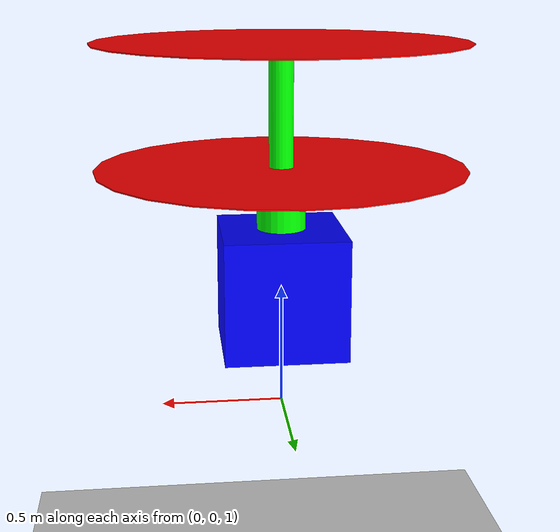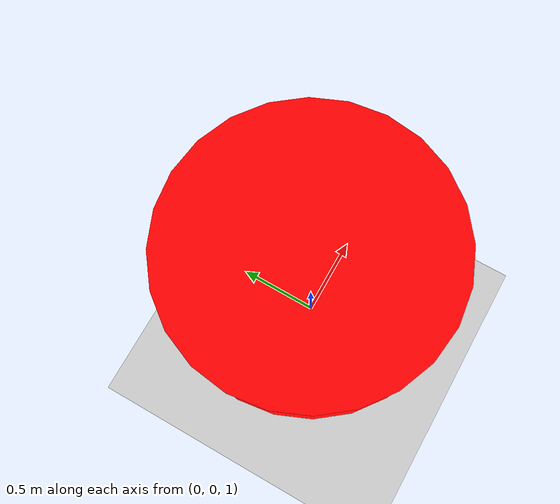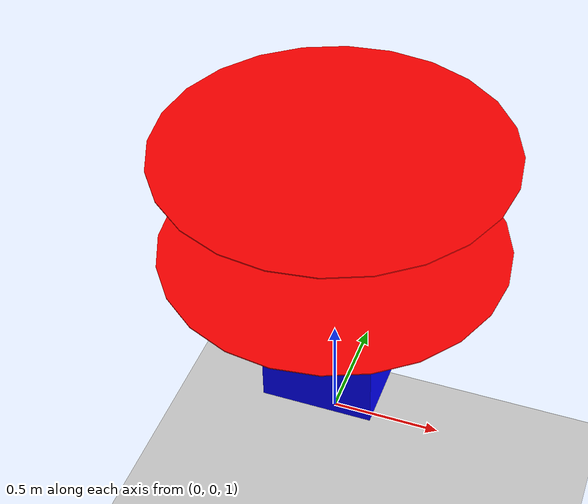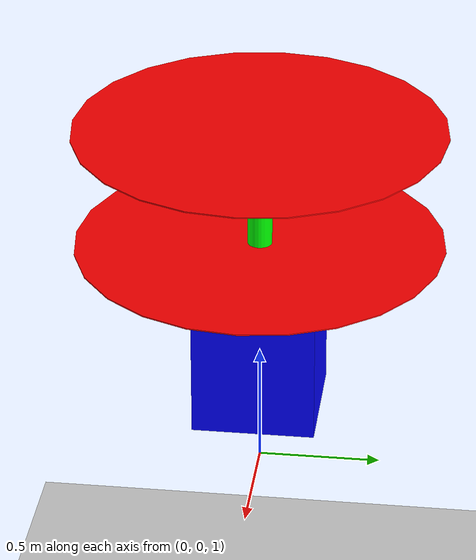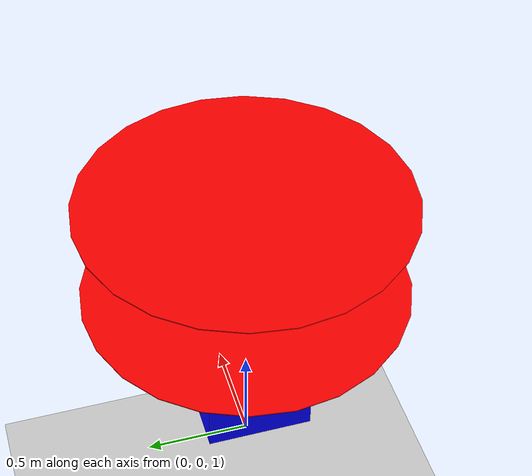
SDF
<?xml version="1.0" encoding="UTF-8"?>
<sdf version='1.8'>
    <world name="car_world">
        <physics name="1ms" type="ignored">
            <max_step_size>0.001</max_step_size>
            <real_time_factor>1.0</real_time_factor>
        </physics>
        <plugin
            filename="gz-sim-physics-system"
            name="gz::sim::systems::Physics">
        </plugin>
        <plugin
            filename="gz-sim-user-commands-system"
            name="gz::sim::systems::UserCommands">
        </plugin>
        <plugin
            filename="gz-sim-scene-broadcaster-system"
            name="gz::sim::systems::SceneBroadcaster">
        </plugin>

        <light type="directional" name="sun">
            <cast_shadows>true</cast_shadows>
            <pose>0 0 10 0 0 0</pose>
            <diffuse>0.8 0.8 0.8 1</diffuse>
            <specular>0.2 0.2 0.2 1</specular>
            <attenuation>
                <range>1000</range>
                <constant>0.9</constant>
                <linear>0.01</linear>
                <quadratic>0.001</quadratic>
            </attenuation>
            <direction>-0.5 0.1 -0.9</direction>
        </light>
        <model name="ground_plane">
            <static>true</static>
            <link name="link">
                <collision name="collision">
                <geometry>
                    <plane>
                    <normal>0 0 1</normal>
                    </plane>
                </geometry>
                </collision>
                <visual name="visual">
                <geometry>
                    <plane>
                    <normal>0 0 1</normal>
                    <size>100 100</size>
                    </plane>
                </geometry>
                <material>
                    <ambient>0.8 0.8 0.8 1</ambient>
                    <diffuse>0.8 0.8 0.8 1</diffuse>
                    <specular>0.8 0.8 0.8 1</specular>
                </material>
                </visual>
            </link>
        </model>
        <model name='Coaxial Helicopter'>
            <pose>0 0 0 0 0 0</pose>
            <self_collide>false</self_collide>
            <static>false</static>

            <!-- Base link -->
            <link name='base_link'>
                <pose>0 0 1.5 0 0 0</pose>
                <inertial>
                    <mass>0.1</mass>
                    <inertia>
                        <ixx>0.029125</ixx>
                        <ixy>0</ixy>
                        <ixz>0</ixz>
                        <iyy>0.029125</iyy>
                        <iyz>0</iyz>
                        <izz>0.055225</izz>
                    </inertia>
                </inertial>
                <gravity>true</gravity>
                <velocity_decay/>
                <collision name='base_link_collision'>
                    <geometry>
                        <box>
                            <size>0.5 0.5 0.5</size>
                        </box>
                    </geometry>
                    <surface>
                    <contact>
                        <ode>
                            <min_depth>0.001</min_depth>
                            <max_vel>0</max_vel>
                            </ode>
                    </contact>
                    <friction>
                        <ode/>
                    </friction>
                </surface>
                </collision>
                <visual name='base_link_visual'>
                    <geometry>
                        <box>
                            <size>0.5 0.5 0.5</size>
                        </box>
                    </geometry>
                    <material>
                        <ambient>0.0 0.0 1.0 1</ambient>
                        <diffuse>0.0 0.0 1.0 1</diffuse>
                        <specular>0.0 0.0 1.0 1</specular>
                    </material>
                </visual>

                <!-- Sensors for model -->
                <sensor name="air_pressure_sensor" type="air_pressure">
                    <always_on>1</always_on>
                    <update_rate>50</update_rate>
                    <air_pressure>
                    <pressure>
                        <noise type="gaussian">
                        <mean>0</mean>
                        <stddev>0.01</stddev>
                        </noise>
                    </pressure>
                    </air_pressure>
                </sensor>
                <sensor name="imu_sensor" type="imu">
                    <always_on>1</always_on>
                    <update_rate>250</update_rate>
                    <imu>
                    <angular_velocity>
                        <x>
                        <noise type="gaussian">
                            <mean>0</mean>
                            <stddev>0.00018665</stddev>
                            <dynamic_bias_stddev>3.8785e-05</dynamic_bias_stddev>
                            <dynamic_bias_correlation_time>1000</dynamic_bias_correlation_time>
                        </noise>
                        </x>
                        <y>
                        <noise type="gaussian">
                            <mean>0</mean>
                            <stddev>0.00018665</stddev>
                            <dynamic_bias_stddev>3.8785e-05</dynamic_bias_stddev>
                            <dynamic_bias_correlation_time>1000</dynamic_bias_correlation_time>
                        </noise>
                        </y>
                        <z>
                        <noise type="gaussian">
                            <mean>0</mean>
                            <stddev>0.00018665</stddev>
                            <dynamic_bias_stddev>3.8785e-05</dynamic_bias_stddev>
                            <dynamic_bias_correlation_time>1000</dynamic_bias_correlation_time>
                        </noise>
                        </z>
                    </angular_velocity>
                    <linear_acceleration>
                        <x>
                        <noise type="gaussian">
                            <mean>0</mean>
                            <stddev>0.00186</stddev>
                            <dynamic_bias_stddev>0.006</dynamic_bias_stddev>
                            <dynamic_bias_correlation_time>300</dynamic_bias_correlation_time>
                        </noise>
                        </x>
                        <y>
                        <noise type="gaussian">
                            <mean>0</mean>
                            <stddev>0.00186</stddev>
                            <dynamic_bias_stddev>0.006</dynamic_bias_stddev>
                            <dynamic_bias_correlation_time>300</dynamic_bias_correlation_time>
                        </noise>
                        </y>
                        <z>
                        <noise type="gaussian">
                            <mean>0</mean>
                            <stddev>0.00186</stddev>
                            <dynamic_bias_stddev>0.006</dynamic_bias_stddev>
                            <dynamic_bias_correlation_time>300</dynamic_bias_correlation_time>
                        </noise>
                        </z>
                    </linear_acceleration>
                    </imu>
                </sensor>
                <sensor name="navsat_sensor" type="navsat">
                    <always_on>1</always_on>
                    <update_rate>30</update_rate>
                </sensor>
            </link>

            <!-- Swashplate links -->
            <link name='swashplate_0'>
                <pose relative_to='base_link'>0 0 0.25 0 0 0</pose>
                <inertial>
                    <mass>0.00000001</mass>
                    <inertia>
                        <ixx>0.02</ixx>
                        <ixy>0</ixy>
                        <ixz>0</ixz>
                        <iyy>0.02</iyy>
                        <iyz>0</iyz>
                        <izz>0.02</izz>
                    </inertia>
                </inertial>
                <gravity>true</gravity>
                <velocity_decay/>
                <collision name='collision_swashplate_0'>
                    <geometry>
                        <cylinder>
                            <radius>0.1</radius>
                            <length>0.5</length>
                        </cylinder>
                    </geometry>
                    <surface>
                    <contact>
                        <ode>
                            <min_depth>0.001</min_depth>
                            <max_vel>0</max_vel>
                            </ode>
                    </contact>
                    <friction>
                        <ode/>
                    </friction>
                </surface>
                </collision>
                <visual name='visual_swashplate_0'>
                    <geometry>
                        <cylinder>
                            <radius>0.1</radius>
                            <length>0.5</length>
                        </cylinder>
                    </geometry>
                    <material>
                        <ambient>0.0 1.0 0 1</ambient>
                        <diffuse>0.0 1.0 0 1</diffuse>
                        <specular>0.0 1.0 0 1</specular>
                    </material>
                </visual>
            </link>
            <link name='swashplate_1'>
                <pose relative_to='base_link'>0 0 0.5 0 0 0</pose>
                <inertial>
                    <mass>0.00000001</mass>
                    <inertia>
                        <ixx>0.02</ixx>
                        <ixy>0</ixy>
                        <ixz>0</ixz>
                        <iyy>0.02</iyy>
                        <iyz>0</iyz>
                        <izz>0.02</izz>
                    </inertia>
                </inertial>
                <gravity>true</gravity>
                <velocity_decay/>
                <collision name='collision_swashplate_1'>
                    <geometry>
                        <cylinder>
                            <radius>0.05</radius>
                            <length>1</length>
                        </cylinder>
                    </geometry>
                    <surface>
                    <contact>
                        <ode>
                            <min_depth>0.001</min_depth>
                            <max_vel>0</max_vel>
                            </ode>
                    </contact>
                    <friction>
                        <ode/>
                    </friction>
                </surface>
                </collision>
                <visual name='visual_swashplate_1'>
                    <geometry>
                        <cylinder>
                            <radius>0.05</radius>
                            <length>1</length>
                        </cylinder>
                    </geometry>
                    <material>
                        <ambient>0.0 1.0 0 1</ambient>
                        <diffuse>0.0 1.0 0 1</diffuse>
                        <specular>0.0 1.0 0 1</specular>
                    </material>
                </visual>
            </link>

            <!-- Rotors link -->
            <link name='rotor_0'>
                <pose relative_to='swashplate_0'>0 0 0.25 0 0 0</pose>
                <inertial>
                    <mass>0.005</mass>
                    <inertia>
                        <ixx>9.75e-07</ixx>
                        <ixy>0</ixy>
                        <ixz>0</ixz>
                        <iyy>0.000273104</iyy>
                        <iyz>0</iyz>
                        <izz>0.000274004</izz>
                    </inertia>
                </inertial>
                <collision name='rotor_0_collision'>
                    <geometry>
                        <cylinder>
                            <length>0.005</length>
                            <radius>0.128</radius>
                        </cylinder>
                    </geometry>
                    <surface>
                        <contact>
                            <ode>
                                <min_depth>0.001</min_depth>
                                <max_vel>0</max_vel>
                            </ode>
                        </contact>
                        <friction>
                            <ode/>
                        </friction>
                    </surface>
                </collision>
                <visual name='rotor_0_visual'>
                    <geometry>
                        <cylinder>
                            <length>0.005</length>
                            <radius>0.75</radius>
                        </cylinder>
                    </geometry>
                    <material>
                        <ambient>1.0 0.0 0 1</ambient>
                        <diffuse>1.0 0.0 0 1</diffuse>
                        <specular>1.0 0.0 0 1</specular>
                    </material>
                </visual>
                <gravity>1</gravity>
                <velocity_decay/>
            </link>
            <link name='rotor_1'>
                <pose relative_to='swashplate_1'>0 0 0.5 0 0 0</pose>
                <inertial>
                    <mass>0.005</mass>
                    <inertia>
                        <ixx>9.75e-07</ixx>
                        <ixy>0</ixy>
                        <ixz>0</ixz>
                        <iyy>0.000273104</iyy>
                        <iyz>0</iyz>
                        <izz>0.000274004</izz>
                    </inertia>
                </inertial>
                <collision name='rotor_1_collision'>
                    <geometry>
                        <cylinder>
                            <length>0.005</length>
                            <radius>0.128</radius>
                        </cylinder>
                    </geometry>
                    <surface>
                        <contact>
                            <ode>
                                <min_depth>0.001</min_depth>
                                <max_vel>0</max_vel>
                            </ode>
                        </contact>
                        <friction>
                            <ode/>
                        </friction>
                    </surface>
                </collision>
                <visual name='rotor_1_visual'>
                    <geometry>
                        <cylinder>
                            <length>0.005</length>
                            <radius>0.75</radius>
                        </cylinder>
                    </geometry>
                    <material>
                        <ambient>1.0 0.0 0 1</ambient>
                        <diffuse>1.0 0.0 0 1</diffuse>
                        <specular>1.0 0.0 0 1</specular>
                    </material>
                </visual>
                <gravity>1</gravity>
                <velocity_decay/>
            </link>

            <!-- Legs link -->

            <!-- Joints -->
            <joint name='base_to_swashplate_0' type='fixed'>
                <pose relative_to='swashplate_0'/>
                <child>swashplate_0</child>
                <parent>base_link</parent>
                <axis>
                    <xyz expressed_in="__model__">-0.788675  0.211325   0.57735</xyz>
                    <limit>
                        <lower>-1e+16</lower>
                        <upper>1e+16</upper>
                    </limit>
                </axis>
            </joint>
            <joint name='base_to_swashplate_1' type='fixed'>
                <pose relative_to='swashplate_1'/>
                <child>swashplate_1</child>
                <parent>base_link</parent>
                <axis>
                    <xyz expressed_in="__model__">-0.788675  0.211325   0.57735</xyz>
                    <limit>
                        <lower>-1e+16</lower>
                        <upper>1e+16</upper>
                    </limit>
                </axis>
            </joint>
            <joint name='rotor_0_joint' type='revolute'>
                <pose relative_to='rotor_0'/>
                <child>rotor_0</child>
                <parent>swashplate_0</parent>
                <axis>
                    <xyz expressed_in="__model__">0 0 1</xyz>
                    <limit>
                        <lower>-1e+16</lower>
                        <upper>1e+16</upper>
                    </limit>
                    <dynamics>
                        <spring_reference>0</spring_reference>
                        <spring_stiffness>0</spring_stiffness>
                    </dynamics>
                </axis>
            </joint>
            <joint name='rotor_1_joint' type='revolute'>
                <pose relative_to='rotor_1'/>
                <child>rotor_1</child>
                <parent>swashplate_1</parent>
                <axis>
                    <xyz expressed_in="__model__">0 0 1</xyz>
                    <limit>
                        <lower>-1e+16</lower>
                        <upper>1e+16</upper>
                    </limit>
                    <dynamics>
                        <spring_reference>0</spring_reference>
                        <spring_stiffness>0</spring_stiffness>
                    </dynamics>
                </axis>
            </joint>

            <!-- Plugins -->
            <plugin filename="gz-sim-multicopter-motor-model-system" name="gz::sim::systems::MulticopterMotorModel">
                <jointName>rotor_0_joint</jointName>
                <linkName>rotor_0</linkName>
                <turningDirection>cw</turningDirection>
                <timeConstantUp>0.0125</timeConstantUp>
                <timeConstantDown>0.025</timeConstantDown>
                <maxRotVelocity>1000</maxRotVelocity>
                <motorConstant>8.54858e-06</motorConstant>
                <momentConstant>0.06</momentConstant>
                <commandSubTopic>command/motor_speed</commandSubTopic>
                <motorNumber>0</motorNumber>
                <rotorDragCoefficient>0.000806428</rotorDragCoefficient>
                <rollingMomentCoefficient>1e-06</rollingMomentCoefficient>
                <rotorVelocitySlowdownSim>10</rotorVelocitySlowdownSim>
                <motorType>velocity</motorType>
            </plugin>
            <plugin filename="gz-sim-multicopter-motor-model-system" name="gz::sim::systems::MulticopterMotorModel">
                <jointName>rotor_1_joint</jointName>
                <linkName>rotor_1</linkName>
                <turningDirection>ccw</turningDirection>
                <timeConstantUp>0.0125</timeConstantUp>
                <timeConstantDown>0.025</timeConstantDown>
                <maxRotVelocity>1000</maxRotVelocity>
                <motorConstant>8.54858e-06</motorConstant>
                <momentConstant>0.06</momentConstant>
                <commandSubTopic>command/motor_speed</commandSubTopic>
                <motorNumber>1</motorNumber>
                <rotorDragCoefficient>0.000806428</rotorDragCoefficient>
                <rollingMomentCoefficient>1e-06</rollingMomentCoefficient>
                <rotorVelocitySlowdownSim>10</rotorVelocitySlowdownSim>
                <motorType>velocity</motorType>
            </plugin>
        </model>
    </world>
</sdf>
